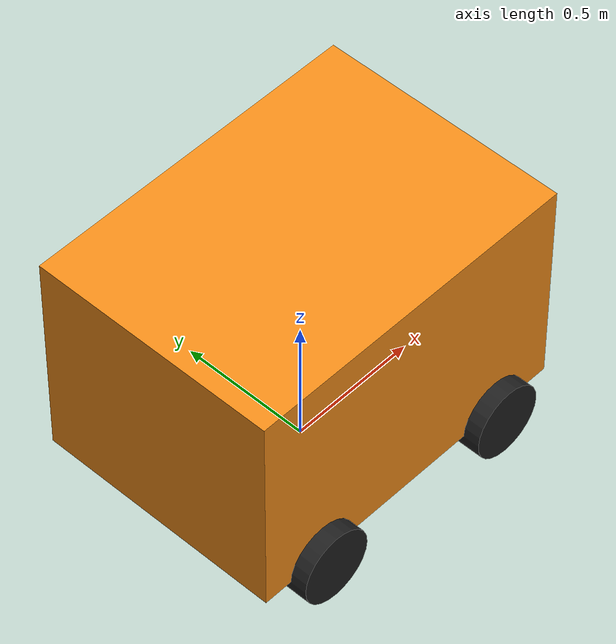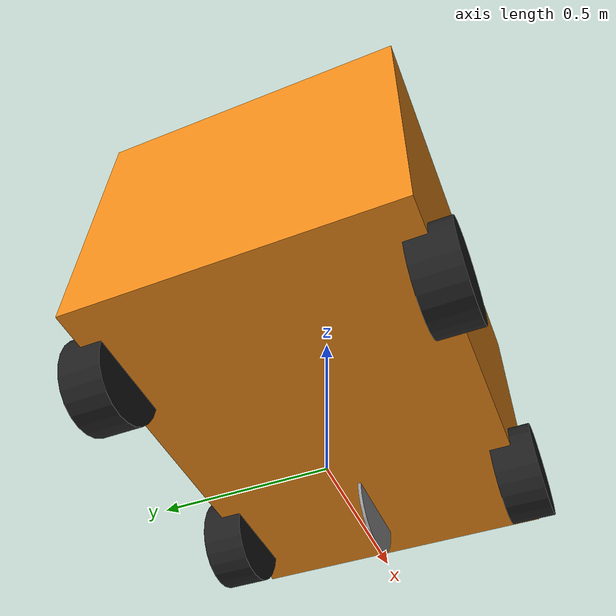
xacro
<?xml version="1.0"?>
<robot xmlns:xacro="http://www.ros.org/wiki/xacro" >
    <xacro:include filename="inertial_macros.xacro"/>
    <xacro:include filename="materials.xacro"/>

    <!-- Constants for robot dimensions -->
    <xacro:property name="PI" value="3.1415926535897931"/>
    <xacro:property name="base_mass" value="8.0" /> <!-- arbitrary value for base mass -->
    <xacro:property name="base_width" value="0.94" />
    <xacro:property name="base_length" value="1.3" />
    <xacro:property name="base_height" value="0.83" />
    <xacro:property name="wheelbase" value="0.8" />
    <xacro:property name="wheel_mass" value="0.34055" /> <!-- arbitrary value for wheel mass -->
    <xacro:property name="wheel_len" value="0.125" />
    <xacro:property name="wheel_radius" value="0.1397" />

    <!-- Base Link -->
    <link name="base_link" />

    <!-- Chassis -->

    <link name="chassis_link">
        <visual>
            <origin xyz="0 0 0" rpy="0 0 0"/>
            <geometry>
                <box size="${base_length} ${base_width} ${base_height}"/>
            </geometry>
            <material name="orange"/>
        </visual>
        <collision>
            <origin xyz="0 0 0" rpy="0 0 0"/>
            <geometry>
                <box size="${base_length} ${base_width} ${base_height}"/>
            </geometry>
        </collision>
        <inertial>
            <origin xyz="0 0 0" rpy="0 0 0"/>
            <mass value="${base_mass}"/>
            <inertia
                ixx="0.000270" ixy="0.0" ixz="0.0"
                iyy="0.000270" iyz="0.0"
                izz="0.000426"/>
        </inertial>
    </link>
    <gazebo reference="chassis_link">
        <material>Gazebo/Orange</material>
    </gazebo>

    <joint name="chassis_joint" type="fixed">
        <parent link="base_link"/>
        <child link="chassis_link"/>
        <origin xyz="0 0 ${base_height/2 + wheel_radius}" rpy="0 0 0"/>
        <axis xyz="0 0 1"/>
        <dynamics damping="0.2"/>
    </joint>

    <!-- rear wheels -->

    <!-- virtual rear wheel -->

    <!-- rear right wheel -->

    <link name="rear_right_wheel">
        <visual>
            <origin xyz="0 0 0" rpy="${PI/2} 0 ${PI/2}"/>
            <geometry>
                <cylinder length="${wheel_len}" radius="${wheel_radius}"/>
            </geometry>
            <material name="black"/>
        </visual>
        <collision>
            <origin xyz="0 0 0" rpy="${PI/2} 0 ${PI/2}"/>
            <geometry>
                <cylinder length="${wheel_len}" radius="${wheel_radius}"/>
            </geometry>
        </collision>
        <inertial>
            <origin xyz="0 0 0" rpy="${PI/2} 0 ${PI/2}"/>
            <mass value="${wheel_mass}"/>
            <inertia
                ixx="0.000270" ixy="0.0" ixz="0.0"
                iyy="0.000270" iyz="0.0"
                izz="0.000426"/>
        </inertial>
    </link>
    <gazebo reference="rear_right_wheel">
        <material>Gazebo/Black</material>
    </gazebo>

    <joint name="rear_right_wheel_joint" type="continuous">
        <parent link="chassis_link"/>
        <child link="rear_right_wheel"/>
        <origin xyz="-${wheelbase/2} ${base_width/2} -${base_height/2}" rpy="0 0 ${PI/2}"/>
        <axis xyz="1 0 0"/>
        <limit effort="100.0" velocity="100.0"/>
        <dynamics damping="0.2"/>
    </joint>

    <!-- rear left wheel -->
    <link name="rear_left_wheel">
        <visual>
            <origin xyz="0 0 0" rpy="${PI/2} 0 ${PI/2}"/>
            <geometry>
                <cylinder length="${wheel_len}" radius="${wheel_radius}"/>
            </geometry>
            <material name="black"/>
        </visual>
        <collision>
            <origin xyz="0 0 0" rpy="${PI/2} 0 ${PI/2}"/>
            <geometry>
                <cylinder length="${wheel_len}" radius="${wheel_radius}"/>
            </geometry>
        </collision>
        <inertial>
            <origin xyz="0 0 0" rpy="${PI/2} 0 ${PI/2}"/>
            <mass value="${wheel_mass}"/>
            <inertia
            ixx="0.000270" ixy="0.0" ixz="0.0"
            iyy="0.000270" iyz="0.0"
            izz="0.000426"/>
        </inertial>
    </link>
    <gazebo reference="rear_left_wheel">
        <material>Gazebo/Blue</material>
    </gazebo>

    <joint name="rear_left_wheel_joint" type="continuous">
        <parent link="chassis_link" />
        <child link="rear_left_wheel" />
        <origin xyz="-${wheelbase/2} -${base_width/2} -${base_height/2}" rpy="0 0 ${PI/2}"/>
        <axis xyz="1 0 0"/>
        <limit effort="100.0" velocity="100.0"/>
        <dynamics damping="0.2"/>
    </joint>

    <!-- front wheels -->

    <!-- virtual front wheel -->

    <link name="virtual_front_wheel">
        <visual>
        <origin xyz="0 0 0" rpy="${PI/2} 0 ${PI/2}"/>
        <geometry>
            <cylinder length="0.01" radius="${wheel_radius}"/>
        </geometry>
        <material name="invisible"/>
        </visual>
        <collision>
                <origin xyz="0 0 0" rpy="${PI/2} 0 ${PI/2}"/>
                <geometry>
                    <cylinder length="0.01" radius="${wheel_radius}"/>
                </geometry>
        </collision>
        <inertial>
                <origin xyz="0 0 0" rpy="${PI/2} 0 ${PI/2}"/>
                <mass value="${wheel_mass}"/>
                <inertia
                    ixx="0.000270" ixy="0.0" ixz="0.0"
                    iyy="0.000270" iyz="0.0"
                    izz="0.000426"/>
        </inertial>
    </link>
    <gazebo reference="virtual_front_wheel">
        <material>Gazebo/GreyTransparent</material>
    </gazebo>

    <joint name="virtual_front_wheel_joint" type="revolute">
        <parent link="chassis_link"/>
        <child link="virtual_front_wheel"/>
        <origin xyz="${wheelbase/2} 0 -${base_height/2}" rpy="0 0 ${PI/2}"/>
        <axis xyz="0 0 1"/>
        <limit lower="-0.4" upper="0.4" effort="100.0" velocity="0.0"/>
        <dynamics damping="0.2"/>
    </joint>

    <!-- front right wheel -->

    <link name="front_right_wheel">
        <visual>
            <origin xyz="0 0 0" rpy="${PI/2} 0 ${PI/2}"/>
            <geometry>
                <cylinder length="${wheel_len}" radius="${wheel_radius}"/>
            </geometry>
            <material name="black"/>
        </visual>
        <collision>
            <origin xyz="0 0 0" rpy="${PI/2} 0 ${PI/2}"/>
            <geometry>
                <cylinder length="${wheel_len}" radius="${wheel_radius}"/>
            </geometry>
        </collision>
        <inertial>
            <origin xyz="0 0 0" rpy="${PI/2} 0 ${PI/2}"/>
            <mass value="${wheel_mass}"/>
            <inertia
                ixx="0.000270" ixy="0.0" ixz="0.0"
                iyy="0.000270" iyz="0.0"
                izz="0.000426"/>
        </inertial>
    </link>
    <gazebo reference="front_right_wheel">
        <material>Gazebo/Blue</material>
    </gazebo>

    <joint name="front_right_wheel_joint" type="revolute">
        <parent link="chassis_link" />
        <child link="front_right_wheel" />
        <origin xyz="${wheelbase/2} ${base_width/2} -${base_height/2}" rpy="0 0 ${PI/2}"/>
        <axis xyz="0 0 1"/>
        <limit lower="-0.4" upper="0.4" effort="100.0" velocity="0.0"/>
        <dynamics damping="0.2"/>
        <mimic joint="virtual_front_wheel_joint" multiplier="1.0" offset="0.0"/>
    </joint>

    <!-- front left steering -->

    <link name="front_left_wheel">
        <visual>
            <origin xyz="0 0 0" rpy="${PI/2} 0 ${PI/2}"/>
            <geometry>
                <cylinder length="${wheel_len}" radius="${wheel_radius}"/>
            </geometry>
            <material name="black"/>
        </visual>
        <collision>
            <origin xyz="0 0 0" rpy="${PI/2} 0 ${PI/2}"/>
            <geometry>
                <cylinder length="${wheel_len}" radius="${wheel_radius}"/>
            </geometry>
        </collision>
        <inertial>
            <origin xyz="0 0 0" rpy="${PI/2} 0 ${PI/2}"/>
            <mass value="${wheel_mass}"/>
            <inertia
                ixx="0.000270" ixy="0.0" ixz="0.0"
                iyy="0.000270" iyz="0.0"
                izz="0.000426"/>
        </inertial>

    </link>
    <gazebo reference="front_left_wheel">
        <material>Gazebo/Blue</material>
    </gazebo>

    <joint name="front_left_wheel_joint" type="revolute">
        <parent link="chassis_link" />
        <child link="front_left_wheel" />
        <origin xyz="${wheelbase/2} -${base_width/2} -${base_height/2}" rpy="0 0 ${PI/2}"/>
        <axis xyz="0 0 1"/>
        <limit lower="-0.4" upper="0.4" effort="100.0" velocity="0.0"/>
        <dynamics damping="0.2"/>
        <mimic joint="virtual_front_wheel_joint" multiplier="1.0" offset="0.0"/>
    </joint>

</robot>
